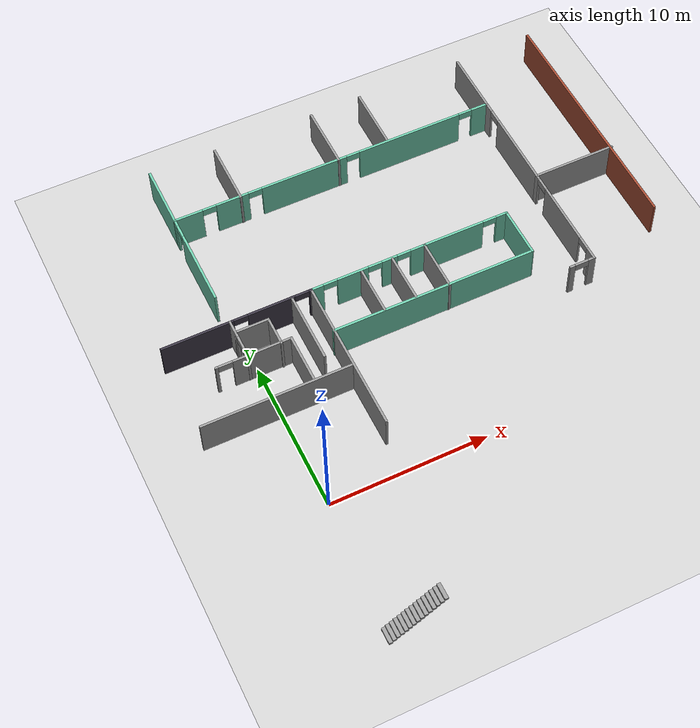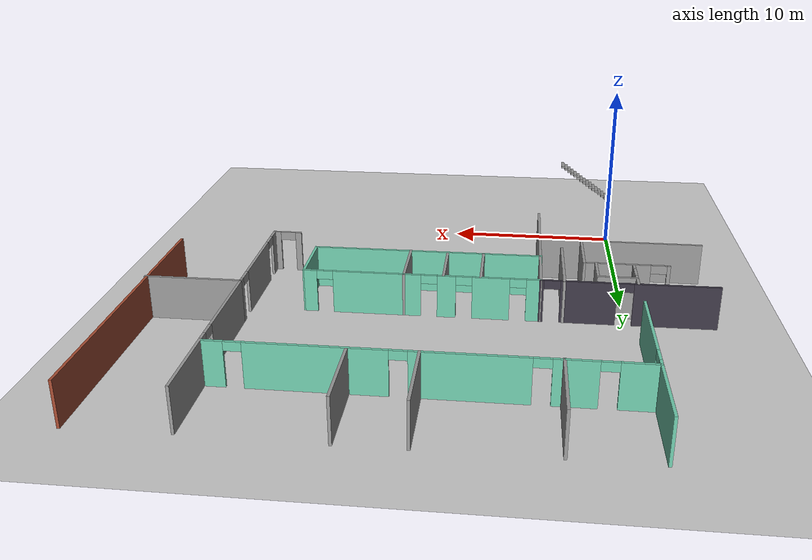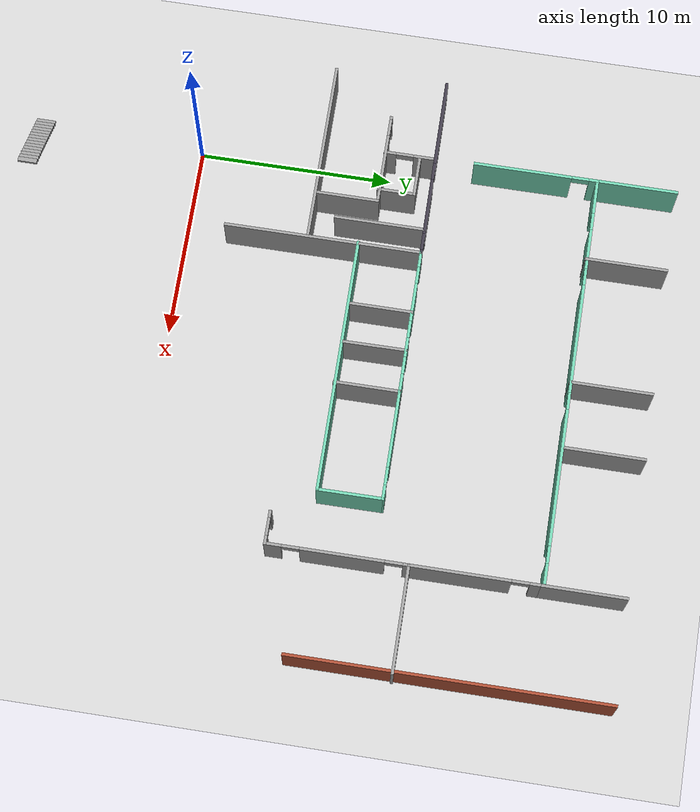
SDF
<sdf version="1.7">
 <world name="default">
  <model name="ground_plane">
   <static>1</static>
   <link name="link">
    <collision name="collision">
     <geometry><plane><normal>0 0 1</normal><size>100 100</size></plane></geometry>
     <surface>
      <contact><ode><kp>1e15</kp><kd>1e13</kd></ode></contact>
      <friction><ode><mu>1.0</mu><mu2>1.0</mu2></ode></friction>
     </surface>
    </collision>
    <visual name="visual">
     <cast_shadows>0</cast_shadows>
     <geometry><plane><normal>0 0 1</normal><size>100 100</size></plane></geometry>
     <material>
      <script><uri>file://media/materials/scripts/gazebo.material</uri><name>Gazebo/Grey</name></script>
     </material>
    </visual>
   </link>
  </model>
  <model name="circuit_launch">
   <pose>-0.874625 6.32825 0 0 -0 0</pose>
   <link name="Stairs_2">
    <visual name="Stairs_2_Visual_0">
     <pose>0.290776 -14.8993 0.083333 0 -0 1.5708</pose>
     <geometry><box><size>1 0.233333 0.166667</size></box></geometry>
     <material>
      <script><uri>file://media/materials/scripts/gazebo.material</uri><name>Gazebo/Grey</name></script>
      <ambient>1 1 1 1</ambient>
     </material>
     <meta><layer>0</layer></meta>
    </visual>
    <collision name="Stairs_2_Collision_0">
     <geometry><box><size>1 0.233333 0.166667</size></box></geometry>
     <pose>0.290776 -14.8993 0.083333 0 -0 1.5708</pose>
    </collision>
    <visual name="Stairs_2_Visual_1">
     <pose>0.524109 -14.8993 0.25 0 -0 1.5708</pose>
     <geometry><box><size>1 0.233333 0.166667</size></box></geometry>
     <material>
      <script><uri>file://media/materials/scripts/gazebo.material</uri><name>Gazebo/Grey</name></script>
      <ambient>1 1 1 1</ambient>
     </material>
     <meta><layer>0</layer></meta>
    </visual>
    <collision name="Stairs_2_Collision_1">
     <geometry><box><size>1 0.233333 0.166667</size></box></geometry>
     <pose>0.524109 -14.8993 0.25 0 -0 1.5708</pose>
    </collision>
    <visual name="Stairs_2_Visual_2">
     <pose>0.757443 -14.8993 0.416667 0 -0 1.5708</pose>
     <geometry><box><size>1 0.233333 0.166667</size></box></geometry>
     <material>
      <script><uri>file://media/materials/scripts/gazebo.material</uri><name>Gazebo/Grey</name></script>
      <ambient>1 1 1 1</ambient>
     </material>
     <meta><layer>0</layer></meta>
    </visual>
    <collision name="Stairs_2_Collision_2">
     <geometry><box><size>1 0.233333 0.166667</size></box></geometry>
     <pose>0.757443 -14.8993 0.416667 0 -0 1.5708</pose>
    </collision>
    <visual name="Stairs_2_Visual_3">
     <pose>0.990776 -14.8993 0.583333 0 -0 1.5708</pose>
     <geometry><box><size>1 0.233333 0.166667</size></box></geometry>
     <material>
      <script><uri>file://media/materials/scripts/gazebo.material</uri><name>Gazebo/Grey</name></script>
      <ambient>1 1 1 1</ambient>
     </material>
     <meta><layer>0</layer></meta>
    </visual>
    <collision name="Stairs_2_Collision_3">
     <geometry><box><size>1 0.233333 0.166667</size></box></geometry>
     <pose>0.990776 -14.8993 0.583333 0 -0 1.5708</pose>
    </collision>
    <visual name="Stairs_2_Visual_4">
     <pose>1.22411 -14.8993 0.75 0 -0 1.5708</pose>
     <geometry><box><size>1 0.233333 0.166667</size></box></geometry>
     <material>
      <script><uri>file://media/materials/scripts/gazebo.material</uri><name>Gazebo/Grey</name></script>
      <ambient>1 1 1 1</ambient>
     </material>
     <meta><layer>0</layer></meta>
    </visual>
    <collision name="Stairs_2_Collision_4">
     <geometry><box><size>1 0.233333 0.166667</size></box></geometry>
     <pose>1.22411 -14.8993 0.75 0 -0 1.5708</pose>
    </collision>
    <visual name="Stairs_2_Visual_5">
     <pose>1.45744 -14.8993 0.916667 0 -0 1.5708</pose>
     <geometry><box><size>1 0.233333 0.166667</size></box></geometry>
     <material>
      <script><uri>file://media/materials/scripts/gazebo.material</uri><name>Gazebo/Grey</name></script>
      <ambient>1 1 1 1</ambient>
     </material>
     <meta><layer>0</layer></meta>
    </visual>
    <collision name="Stairs_2_Collision_5">
     <geometry><box><size>1 0.233333 0.166667</size></box></geometry>
     <pose>1.45744 -14.8993 0.916667 0 -0 1.5708</pose>
    </collision>
    <visual name="Stairs_2_Visual_6">
     <pose>1.69078 -14.8993 1.08333 0 -0 1.5708</pose>
     <geometry><box><size>1 0.233333 0.166667</size></box></geometry>
     <material>
      <script><uri>file://media/materials/scripts/gazebo.material</uri><name>Gazebo/Grey</name></script>
      <ambient>1 1 1 1</ambient>
     </material>
     <meta><layer>0</layer></meta>
    </visual>
    <collision name="Stairs_2_Collision_6">
     <geometry><box><size>1 0.233333 0.166667</size></box></geometry>
     <pose>1.69078 -14.8993 1.08333 0 -0 1.5708</pose>
    </collision>
    <visual name="Stairs_2_Visual_7">
     <pose>1.92411 -14.8993 1.25 0 -0 1.5708</pose>
     <geometry><box><size>1 0.233333 0.166667</size></box></geometry>
     <material>
      <script><uri>file://media/materials/scripts/gazebo.material</uri><name>Gazebo/Grey</name></script>
      <ambient>1 1 1 1</ambient>
     </material>
     <meta><layer>0</layer></meta>
    </visual>
    <collision name="Stairs_2_Collision_7">
     <geometry><box><size>1 0.233333 0.166667</size></box></geometry>
     <pose>1.92411 -14.8993 1.25 0 -0 1.5708</pose>
    </collision>
    <visual name="Stairs_2_Visual_8">
     <pose>2.15744 -14.8993 1.41667 0 -0 1.5708</pose>
     <geometry><box><size>1 0.233333 0.166667</size></box></geometry>
     <material>
      <script><uri>file://media/materials/scripts/gazebo.material</uri><name>Gazebo/Grey</name></script>
      <ambient>1 1 1 1</ambient>
     </material>
     <meta><layer>0</layer></meta>
    </visual>
    <collision name="Stairs_2_Collision_8">
     <geometry><box><size>1 0.233333 0.166667</size></box></geometry>
     <pose>2.15744 -14.8993 1.41667 0 -0 1.5708</pose>
    </collision>
    <visual name="Stairs_2_Visual_9">
     <pose>2.39078 -14.8993 1.58333 0 -0 1.5708</pose>
     <geometry><box><size>1 0.233333 0.166667</size></box></geometry>
     <material>
      <script><uri>file://media/materials/scripts/gazebo.material</uri><name>Gazebo/Grey</name></script>
      <ambient>1 1 1 1</ambient>
     </material>
     <meta><layer>0</layer></meta>
    </visual>
    <collision name="Stairs_2_Collision_9">
     <geometry><box><size>1 0.233333 0.166667</size></box></geometry>
     <pose>2.39078 -14.8993 1.58333 0 -0 1.5708</pose>
    </collision>
    <visual name="Stairs_2_Visual_10">
     <pose>2.62411 -14.8993 1.75 0 -0 1.5708</pose>
     <geometry><box><size>1 0.233333 0.166667</size></box></geometry>
     <material>
      <script><uri>file://media/materials/scripts/gazebo.material</uri><name>Gazebo/Grey</name></script>
      <ambient>1 1 1 1</ambient>
     </material>
     <meta><layer>0</layer></meta>
    </visual>
    <collision name="Stairs_2_Collision_10">
     <geometry><box><size>1 0.233333 0.166667</size></box></geometry>
     <pose>2.62411 -14.8993 1.75 0 -0 1.5708</pose>
    </collision>
    <visual name="Stairs_2_Visual_11">
     <pose>2.85744 -14.8993 1.91667 0 -0 1.5708</pose>
     <geometry><box><size>1 0.233333 0.166667</size></box></geometry>
     <material>
      <script><uri>file://media/materials/scripts/gazebo.material</uri><name>Gazebo/Grey</name></script>
      <ambient>1 1 1 1</ambient>
     </material>
     <meta><layer>0</layer></meta>
    </visual>
    <collision name="Stairs_2_Collision_11">
     <geometry><box><size>1 0.233333 0.166667</size></box></geometry>
     <pose>2.85744 -14.8993 1.91667 0 -0 1.5708</pose>
    </collision>
    <visual name="Stairs_2_Visual_12">
     <pose>3.09078 -14.8993 2.08333 0 -0 1.5708</pose>
     <geometry><box><size>1 0.233333 0.166667</size></box></geometry>
     <material>
      <script><uri>file://media/materials/scripts/gazebo.material</uri><name>Gazebo/Grey</name></script>
      <ambient>1 1 1 1</ambient>
     </material>
     <meta><layer>0</layer></meta>
    </visual>
    <collision name="Stairs_2_Collision_12">
     <geometry><box><size>1 0.233333 0.166667</size></box></geometry>
     <pose>3.09078 -14.8993 2.08333 0 -0 1.5708</pose>
    </collision>
    <visual name="Stairs_2_Visual_13">
     <pose>3.32411 -14.8993 2.25 0 -0 1.5708</pose>
     <geometry><box><size>1 0.233333 0.166667</size></box></geometry>
     <material>
      <script><uri>file://media/materials/scripts/gazebo.material</uri><name>Gazebo/Grey</name></script>
      <ambient>1 1 1 1</ambient>
     </material>
     <meta><layer>0</layer></meta>
    </visual>
    <collision name="Stairs_2_Collision_13">
     <geometry><box><size>1 0.233333 0.166667</size></box></geometry>
     <pose>3.32411 -14.8993 2.25 0 -0 1.5708</pose>
    </collision>
    <visual name="Stairs_2_Visual_14">
     <pose>3.55744 -14.8993 2.41667 0 -0 1.5708</pose>
     <geometry><box><size>1 0.233333 0.166667</size></box></geometry>
     <material>
      <script><uri>file://media/materials/scripts/gazebo.material</uri><name>Gazebo/Grey</name></script>
      <ambient>1 1 1 1</ambient>
     </material>
     <meta><layer>0</layer></meta>
    </visual>
    <collision name="Stairs_2_Collision_14">
     <geometry><box><size>1 0.233333 0.166667</size></box></geometry>
     <pose>3.55744 -14.8993 2.41667 0 -0 1.5708</pose>
    </collision>
   </link>
   <link name="Wall_100">
    <pose>21.684 10.9599 0 0 -0 1.5708</pose>
    <visual name="Wall_100_Visual_0">
     <pose>-0.787773 0 1.25 0 -0 0</pose>
     <geometry><box><size>5.12125 0.15 2.5</size></box></geometry>
     <material>
      <script><uri>file://media/materials/scripts/gazebo.material</uri><name>Gazebo/Grey</name></script>
      <ambient>1 1 1 1</ambient>
     </material>
     <meta><layer>0</layer></meta>
    </visual>
    <collision name="Wall_100_Collision_0">
     <geometry><box><size>5.12125 0.15 2.5</size></box></geometry>
     <pose>-0.787773 0 1.25 0 -0 0</pose>
    </collision>
    <visual name="Wall_100_Visual_1">
     <pose>3.01063 0 1.25 0 -0 0</pose>
     <geometry><box><size>0.675545 0.15 2.5</size></box></geometry>
     <material>
      <script><uri>file://media/materials/scripts/gazebo.material</uri><name>Gazebo/Grey</name></script>
      <ambient>1 1 1 1</ambient>
     </material>
     <meta><layer>0</layer></meta>
    </visual>
    <collision name="Wall_100_Collision_1">
     <geometry><box><size>0.675545 0.15 2.5</size></box></geometry>
     <pose>3.01063 0 1.25 0 -0 0</pose>
    </collision>
    <visual name="Wall_100_Visual_2">
     <pose>2.22286 0 2.25 0 -0 0</pose>
     <geometry><box><size>0.9 0.15 0.5</size></box></geometry>
     <material>
      <script><uri>file://media/materials/scripts/gazebo.material</uri><name>Gazebo/Grey</name></script>
      <ambient>1 1 1 1</ambient>
     </material>
     <meta><layer>0</layer></meta>
    </visual>
    <collision name="Wall_100_Collision_2">
     <geometry><box><size>0.9 0.15 0.5</size></box></geometry>
     <pose>2.22286 0 2.25 0 -0 0</pose>
    </collision>
   </link>
   <link name="Wall_12">
    <collision name="Wall_12_Collision">
     <geometry><box><size>10.25 0.15 2.5</size></box></geometry>
     <pose>0 0 1.25 0 -0 0</pose>
    </collision>
    <visual name="Wall_12_Visual">
     <pose>0 0 1.25 0 -0 0</pose>
     <geometry><box><size>10.25 0.15 2.5</size></box></geometry>
     <material>
      <script><uri>file://media/materials/scripts/gazebo.material</uri><name>Gazebo/Grey</name></script>
      <ambient>1 1 1 1</ambient>
     </material>
     <meta><layer>0</layer></meta>
    </visual>
    <pose>5.48338 0.868521 0 0 -0 1.5708</pose>
   </link>
   <link name="Wall_13">
    <pose>0.725889 5.90411 0 0 -0 -3.13856</pose>
    <visual name="Wall_13_Visual_0">
     <pose>-4.71281 0 1.25 0 -0 0</pose>
     <geometry><box><size>0.239451 0.15 2.5</size></box></geometry>
     <material>
      <script><uri>file://media/materials/scripts/gazebo.material</uri><name>Gazebo/Grey</name></script>
      <ambient>0.239216 0.219608 0.27451 1</ambient>
     </material>
     <meta><layer>0</layer></meta>
    </visual>
    <collision name="Wall_13_Collision_0">
     <geometry><box><size>0.239451 0.15 2.5</size></box></geometry>
     <pose>-4.71281 0 1.25 0 -0 0</pose>
    </collision>
    <visual name="Wall_13_Visual_1">
     <pose>-2.18096 0 1.25 0 -0 0</pose>
     <geometry><box><size>3.02425 0.15 2.5</size></box></geometry>
     <material>
      <script><uri>file://media/materials/scripts/gazebo.material</uri><name>Gazebo/Grey</name></script>
      <ambient>0.239216 0.219608 0.27451 1</ambient>
     </material>
     <meta><layer>0</layer></meta>
    </visual>
    <collision name="Wall_13_Collision_1">
     <geometry><box><size>3.02425 0.15 2.5</size></box></geometry>
     <pose>-2.18096 0 1.25 0 -0 0</pose>
    </collision>
    <visual name="Wall_13_Visual_2">
     <pose>2.53185 0 1.25 0 -0 0</pose>
     <geometry><box><size>4.60137 0.15 2.5</size></box></geometry>
     <material>
      <script><uri>file://media/materials/scripts/gazebo.material</uri><name>Gazebo/Grey</name></script>
      <ambient>0.239216 0.219608 0.27451 1</ambient>
     </material>
     <meta><layer>0</layer></meta>
    </visual>
    <collision name="Wall_13_Collision_2">
     <geometry><box><size>4.60137 0.15 2.5</size></box></geometry>
     <pose>2.53185 0 1.25 0 -0 0</pose>
    </collision>
    <visual name="Wall_13_Visual_3">
     <pose>-4.14309 0 2.25 0 -0 0</pose>
     <geometry><box><size>0.9 0.15 0.5</size></box></geometry>
     <material>
      <script><uri>file://media/materials/scripts/gazebo.material</uri><name>Gazebo/Grey</name></script>
      <ambient>0.239216 0.219608 0.27451 1</ambient>
     </material>
     <meta><layer>0</layer></meta>
    </visual>
    <collision name="Wall_13_Collision_3">
     <geometry><box><size>0.9 0.15 0.5</size></box></geometry>
     <pose>-4.14309 0 2.25 0 -0 0</pose>
    </collision>
    <visual name="Wall_13_Visual_4">
     <pose>-0.218831 0 2.25 0 -0 0</pose>
     <geometry><box><size>0.9 0.15 0.5</size></box></geometry>
     <material>
      <script><uri>file://media/materials/scripts/gazebo.material</uri><name>Gazebo/Grey</name></script>
      <ambient>0.239216 0.219608 0.27451 1</ambient>
     </material>
     <meta><layer>0</layer></meta>
    </visual>
    <collision name="Wall_13_Collision_4">
     <geometry><box><size>0.9 0.15 0.5</size></box></geometry>
     <pose>-0.218831 0 2.25 0 -0 0</pose>
    </collision>
   </link>
   <link name="Wall_156">
    <collision name="Wall_156_Collision">
     <geometry><box><size>4.3032 0.15 2.5</size></box></geometry>
     <pose>0 0 1.25 0 -0 0</pose>
    </collision>
    <visual name="Wall_156_Visual">
     <pose>0 0 1.25 0 -0 0</pose>
     <geometry><box><size>4.3032 0.15 2.5</size></box></geometry>
     <material>
      <script><uri>file://media/materials/scripts/gazebo.material</uri><name>Gazebo/Grey</name></script>
      <ambient>1 1 1 1</ambient>
     </material>
     <meta><layer>0</layer></meta>
    </visual>
    <pose>21.684 16.3099 0 0 -0 1.5708</pose>
   </link>
   <link name="Wall_158">
    <collision name="Wall_158_Collision">
     <geometry><box><size>4.25 0.15 2.5</size></box></geometry>
     <pose>0 0 1.25 0 -0 0</pose>
    </collision>
    <visual name="Wall_158_Visual">
     <pose>0 0 1.25 0 -0 0</pose>
     <geometry><box><size>4.25 0.15 2.5</size></box></geometry>
     <material>
      <script><uri>file://media/materials/scripts/gazebo.material</uri><name>Gazebo/Grey</name></script>
      <ambient>1 1 1 1</ambient>
     </material>
     <meta><layer>0</layer></meta>
    </visual>
    <pose>14.6128 16.3903 0 0 -0 1.5708</pose>
   </link>
   <link name="Wall_160">
    <collision name="Wall_160_Collision">
     <geometry><box><size>4.25 0.15 2.5</size></box></geometry>
     <pose>0 0 1.25 0 -0 0</pose>
    </collision>
    <visual name="Wall_160_Visual">
     <pose>0 0 1.25 0 -0 0</pose>
     <geometry><box><size>4.25 0.15 2.5</size></box></geometry>
     <material>
      <script><uri>file://media/materials/scripts/gazebo.material</uri><name>Gazebo/Grey</name></script>
      <ambient>1 1 1 1</ambient>
     </material>
     <meta><layer>0</layer></meta>
    </visual>
    <pose>11.1867 16.3597 0 0 -0 1.5708</pose>
   </link>
   <link name="Wall_163">
    <collision name="Wall_163_Collision">
     <geometry><box><size>4.25 0.15 2.5</size></box></geometry>
     <pose>0 0 1.25 0 -0 0</pose>
    </collision>
    <visual name="Wall_163_Visual">
     <pose>0 0 1.25 0 -0 0</pose>
     <geometry><box><size>4.25 0.15 2.5</size></box></geometry>
     <material>
      <script><uri>file://media/materials/scripts/gazebo.material</uri><name>Gazebo/Grey</name></script>
      <ambient>1 1 1 1</ambient>
     </material>
     <meta><layer>0</layer></meta>
    </visual>
    <pose>4.51804 16.3291 0 0 -0 1.5708</pose>
   </link>
   <link name="Wall_165">
    <collision name="Wall_165_Collision">
     <geometry><box><size>4.25 0.15 2.5</size></box></geometry>
     <pose>0 0 1.25 0 -0 0</pose>
    </collision>
    <visual name="Wall_165_Visual">
     <pose>0 0 1.25 0 -0 0</pose>
     <geometry><box><size>4.25 0.15 2.5</size></box></geometry>
     <material>
      <script><uri>file://media/materials/scripts/gazebo.material</uri><name>Gazebo/Grey</name></script>
      <ambient>0.435294 0.796078 0.67451 1</ambient>
     </material>
     <meta><layer>0</layer></meta>
    </visual>
    <pose>0.179829 16.3748 0 0 -0 1.5708</pose>
   </link>
   <link name="Wall_194">
    <pose>10.8548 14.3248 0 0 -0 0</pose>
    <visual name="Wall_194_Visual_0">
     <pose>-9.80483 0 1.25 0 -0 0</pose>
     <geometry><box><size>1.89033 0.15 2.5</size></box></geometry>
     <material>
      <script><uri>file://media/materials/scripts/gazebo.material</uri><name>Gazebo/Grey</name></script>
      <ambient>0.435294 0.796078 0.67451 1</ambient>
     </material>
     <meta><layer>0</layer></meta>
    </visual>
    <collision name="Wall_194_Collision_0">
     <geometry><box><size>1.89033 0.15 2.5</size></box></geometry>
     <pose>-9.80483 0 1.25 0 -0 0</pose>
    </collision>
    <visual name="Wall_194_Visual_1">
     <pose>-6.88016 0 1.25 0 -0 0</pose>
     <geometry><box><size>2.15902 0.15 2.5</size></box></geometry>
     <material>
      <script><uri>file://media/materials/scripts/gazebo.material</uri><name>Gazebo/Grey</name></script>
      <ambient>0.435294 0.796078 0.67451 1</ambient>
     </material>
     <meta><layer>0</layer></meta>
    </visual>
    <collision name="Wall_194_Collision_1">
     <geometry><box><size>2.15902 0.15 2.5</size></box></geometry>
     <pose>-6.88016 0 1.25 0 -0 0</pose>
    </collision>
    <visual name="Wall_194_Visual_2">
     <pose>-2.01232 0 1.25 0 -0 0</pose>
     <geometry><box><size>5.77665 0.15 2.5</size></box></geometry>
     <material>
      <script><uri>file://media/materials/scripts/gazebo.material</uri><name>Gazebo/Grey</name></script>
      <ambient>0.435294 0.796078 0.67451 1</ambient>
     </material>
     <meta><layer>0</layer></meta>
    </visual>
    <collision name="Wall_194_Collision_2">
     <geometry><box><size>5.77665 0.15 2.5</size></box></geometry>
     <pose>-2.01232 0 1.25 0 -0 0</pose>
    </collision>
    <visual name="Wall_194_Visual_3">
     <pose>5.28944 0 1.25 0 -0 0</pose>
     <geometry><box><size>7.02686 0.15 2.5</size></box></geometry>
     <material>
      <script><uri>file://media/materials/scripts/gazebo.material</uri><name>Gazebo/Grey</name></script>
      <ambient>0.435294 0.796078 0.67451 1</ambient>
     </material>
     <meta><layer>0</layer></meta>
    </visual>
    <collision name="Wall_194_Collision_3">
     <geometry><box><size>7.02686 0.15 2.5</size></box></geometry>
     <pose>5.28944 0 1.25 0 -0 0</pose>
    </collision>
    <visual name="Wall_194_Visual_4">
     <pose>10.2264 0 1.25 0 -0 0</pose>
     <geometry><box><size>1.04713 0.15 2.5</size></box></geometry>
     <material>
      <script><uri>file://media/materials/scripts/gazebo.material</uri><name>Gazebo/Grey</name></script>
      <ambient>0.435294 0.796078 0.67451 1</ambient>
     </material>
     <meta><layer>0</layer></meta>
    </visual>
    <collision name="Wall_194_Collision_4">
     <geometry><box><size>1.04713 0.15 2.5</size></box></geometry>
     <pose>10.2264 0 1.25 0 -0 0</pose>
    </collision>
    <visual name="Wall_194_Visual_5">
     <pose>-8.40967 0 2.25 0 -0 0</pose>
     <geometry><box><size>0.9 0.15 0.5</size></box></geometry>
     <material>
      <script><uri>file://media/materials/scripts/gazebo.material</uri><name>Gazebo/Grey</name></script>
      <ambient>0.435294 0.796078 0.67451 1</ambient>
     </material>
     <meta><layer>0</layer></meta>
    </visual>
    <collision name="Wall_194_Collision_5">
     <geometry><box><size>0.9 0.15 0.5</size></box></geometry>
     <pose>-8.40967 0 2.25 0 -0 0</pose>
    </collision>
    <visual name="Wall_194_Visual_6">
     <pose>-5.35064 0 2.25 0 -0 0</pose>
     <geometry><box><size>0.9 0.15 0.5</size></box></geometry>
     <material>
      <script><uri>file://media/materials/scripts/gazebo.material</uri><name>Gazebo/Grey</name></script>
      <ambient>0.435294 0.796078 0.67451 1</ambient>
     </material>
     <meta><layer>0</layer></meta>
    </visual>
    <collision name="Wall_194_Collision_6">
     <geometry><box><size>0.9 0.15 0.5</size></box></geometry>
     <pose>-5.35064 0 2.25 0 -0 0</pose>
    </collision>
    <visual name="Wall_194_Visual_7">
     <pose>1.32601 0 2.25 0 -0 0</pose>
     <geometry><box><size>0.9 0.15 0.5</size></box></geometry>
     <material>
      <script><uri>file://media/materials/scripts/gazebo.material</uri><name>Gazebo/Grey</name></script>
      <ambient>0.435294 0.796078 0.67451 1</ambient>
     </material>
     <meta><layer>0</layer></meta>
    </visual>
    <collision name="Wall_194_Collision_7">
     <geometry><box><size>0.9 0.15 0.5</size></box></geometry>
     <pose>1.32601 0 2.25 0 -0 0</pose>
    </collision>
    <visual name="Wall_194_Visual_8">
     <pose>9.25286 0 2.25 0 -0 0</pose>
     <geometry><box><size>0.9 0.15 0.5</size></box></geometry>
     <material>
      <script><uri>file://media/materials/scripts/gazebo.material</uri><name>Gazebo/Grey</name></script>
      <ambient>0.435294 0.796078 0.67451 1</ambient>
     </material>
     <meta><layer>0</layer></meta>
    </visual>
    <collision name="Wall_194_Collision_8">
     <geometry><box><size>0.9 0.15 0.5</size></box></geometry>
     <pose>9.25286 0 2.25 0 -0 0</pose>
    </collision>
   </link>
   <link name="Wall_198">
    <pose>0.179829 11.1498 0 0 -0 -1.5708</pose>
    <visual name="Wall_198_Visual_0">
     <pose>-2.99528 0 1.25 0 -0 0</pose>
     <geometry><box><size>0.509431 0.15 2.5</size></box></geometry>
     <material>
      <script><uri>file://media/materials/scripts/gazebo.material</uri><name>Gazebo/Grey</name></script>
      <ambient>0.435294 0.796078 0.67451 1</ambient>
     </material>
     <meta><layer>0</layer></meta>
    </visual>
    <collision name="Wall_198_Collision_0">
     <geometry><box><size>0.509431 0.15 2.5</size></box></geometry>
     <pose>-2.99528 0 1.25 0 -0 0</pose>
    </collision>
    <visual name="Wall_198_Visual_1">
     <pose>0.704715 0 1.25 0 -0 0</pose>
     <geometry><box><size>5.09057 0.15 2.5</size></box></geometry>
     <material>
      <script><uri>file://media/materials/scripts/gazebo.material</uri><name>Gazebo/Grey</name></script>
      <ambient>0.435294 0.796078 0.67451 1</ambient>
     </material>
     <meta><layer>0</layer></meta>
    </visual>
    <collision name="Wall_198_Collision_1">
     <geometry><box><size>5.09057 0.15 2.5</size></box></geometry>
     <pose>0.704715 0 1.25 0 -0 0</pose>
    </collision>
    <visual name="Wall_198_Visual_2">
     <pose>-2.29057 0 2.25 0 -0 0</pose>
     <geometry><box><size>0.9 0.15 0.5</size></box></geometry>
     <material>
      <script><uri>file://media/materials/scripts/gazebo.material</uri><name>Gazebo/Grey</name></script>
      <ambient>0.435294 0.796078 0.67451 1</ambient>
     </material>
     <meta><layer>0</layer></meta>
    </visual>
    <collision name="Wall_198_Collision_2">
     <geometry><box><size>0.9 0.15 0.5</size></box></geometry>
     <pose>-2.29057 0 2.25 0 -0 0</pose>
    </collision>
   </link>
   <link name="Wall_214">
    <collision name="Wall_214_Collision">
     <geometry><box><size>3.44918 0.15 2.5</size></box></geometry>
     <pose>0 0 1.25 0 -0 0</pose>
    </collision>
    <visual name="Wall_214_Visual">
     <pose>0 0 1.25 0 -0 0</pose>
     <geometry><box><size>3.44918 0.15 2.5</size></box></geometry>
     <material>
      <script><uri>file://media/materials/scripts/gazebo.material</uri><name>Gazebo/Grey</name></script>
      <ambient>1 1 1 1</ambient>
     </material>
     <meta><layer>0</layer></meta>
    </visual>
    <pose>12.9929 4.29092 0 0 -0 -1.5708</pose>
   </link>
   <link name="Wall_216">
    <collision name="Wall_216_Collision">
     <geometry><box><size>3.30783 0.15 2.5</size></box></geometry>
     <pose>0 0 1.25 0 -0 0</pose>
    </collision>
    <visual name="Wall_216_Visual">
     <pose>0 0 1.25 0 -0 0</pose>
     <geometry><box><size>3.30783 0.15 2.5</size></box></geometry>
     <material>
      <script><uri>file://media/materials/scripts/gazebo.material</uri><name>Gazebo/Grey</name></script>
      <ambient>1 1 1 1</ambient>
     </material>
     <meta><layer>0</layer></meta>
    </visual>
    <pose>10.8106 4.34121 0 0 -0 -1.56443</pose>
   </link>
   <link name="Wall_218">
    <collision name="Wall_218_Collision">
     <geometry><box><size>3.34806 0.15 2.5</size></box></geometry>
     <pose>0 0 1.25 0 -0 0</pose>
    </collision>
    <visual name="Wall_218_Visual">
     <pose>0 0 1.25 0 -0 0</pose>
     <geometry><box><size>3.34806 0.15 2.5</size></box></geometry>
     <material>
      <script><uri>file://media/materials/scripts/gazebo.material</uri><name>Gazebo/Grey</name></script>
      <ambient>1 1 1 1</ambient>
     </material>
     <meta><layer>0</layer></meta>
    </visual>
    <pose>8.74891 4.32109 0 0 -0 -1.5708</pose>
   </link>
   <link name="Wall_22">
    <collision name="Wall_22_Collision">
     <geometry><box><size>9.5 0.15 2.5</size></box></geometry>
     <pose>0 0 1.25 0 -0 0</pose>
    </collision>
    <visual name="Wall_22_Visual">
     <pose>0 0 1.25 0 -0 0</pose>
     <geometry><box><size>9.5 0.15 2.5</size></box></geometry>
     <material>
      <script><uri>file://media/materials/scripts/gazebo.material</uri><name>Gazebo/Grey</name></script>
      <ambient>1 1 1 1</ambient>
     </material>
     <meta><layer>0</layer></meta>
    </visual>
    <pose>0.676779 0.065985 0 0 -0 0</pose>
   </link>
   <link name="Wall_224">
    <pose>15.7929 5.94024 0 0 -0 0</pose>
    <visual name="Wall_224_Visual_0">
     <pose>-0.850007 0 1.25 0 -0 0</pose>
     <geometry><box><size>4.04999 0.15 2.5</size></box></geometry>
     <material>
      <script><uri>file://media/materials/scripts/gazebo.material</uri><name>Gazebo/Grey</name></script>
      <ambient>0.435294 0.796078 0.67451 1</ambient>
     </material>
     <meta><layer>0</layer></meta>
    </visual>
    <collision name="Wall_224_Collision_0">
     <geometry><box><size>4.04999 0.15 2.5</size></box></geometry>
     <pose>-0.850007 0 1.25 0 -0 0</pose>
    </collision>
    <visual name="Wall_224_Visual_1">
     <pose>2.47499 0 1.25 0 -0 0</pose>
     <geometry><box><size>0.800014 0.15 2.5</size></box></geometry>
     <material>
      <script><uri>file://media/materials/scripts/gazebo.material</uri><name>Gazebo/Grey</name></script>
      <ambient>0.435294 0.796078 0.67451 1</ambient>
     </material>
     <meta><layer>0</layer></meta>
    </visual>
    <collision name="Wall_224_Collision_1">
     <geometry><box><size>0.800014 0.15 2.5</size></box></geometry>
     <pose>2.47499 0 1.25 0 -0 0</pose>
    </collision>
    <visual name="Wall_224_Visual_2">
     <pose>1.62499 0 2.25 0 -0 0</pose>
     <geometry><box><size>0.9 0.15 0.5</size></box></geometry>
     <material>
      <script><uri>file://media/materials/scripts/gazebo.material</uri><name>Gazebo/Grey</name></script>
      <ambient>0.435294 0.796078 0.67451 1</ambient>
     </material>
     <meta><layer>0</layer></meta>
    </visual>
    <collision name="Wall_224_Collision_2">
     <geometry><box><size>0.9 0.15 0.5</size></box></geometry>
     <pose>1.62499 0 2.25 0 -0 0</pose>
    </collision>
   </link>
   <link name="Wall_225">
    <collision name="Wall_225_Collision">
     <geometry><box><size>3.40841 0.15 2.5</size></box></geometry>
     <pose>0 0 1.25 0 -0 0</pose>
    </collision>
    <visual name="Wall_225_Visual">
     <pose>0 0 1.25 0 -0 0</pose>
     <geometry><box><size>3.40841 0.15 2.5</size></box></geometry>
     <material>
      <script><uri>file://media/materials/scripts/gazebo.material</uri><name>Gazebo/Grey</name></script>
      <ambient>0.435294 0.796078 0.67451 1</ambient>
     </material>
     <meta><layer>0</layer></meta>
    </visual>
    <pose>18.5987 4.31104 0 0 -0 -1.56721</pose>
   </link>
   <link name="Wall_32">
    <pose>0.651978 3.30545 0 0 -0 0</pose>
    <visual name="Wall_32_Visual_0">
     <pose>-2.33849 0 1.25 0 -0 0</pose>
     <geometry><box><size>0.19508 0.15 2.5</size></box></geometry>
     <material>
      <script><uri>file://media/materials/scripts/gazebo.material</uri><name>Gazebo/Grey</name></script>
      <ambient>1 1 1 1</ambient>
     </material>
     <meta><layer>0</layer></meta>
    </visual>
    <collision name="Wall_32_Collision_0">
     <geometry><box><size>0.19508 0.15 2.5</size></box></geometry>
     <pose>-2.33849 0 1.25 0 -0 0</pose>
    </collision>
    <visual name="Wall_32_Visual_1">
     <pose>0.54754 0 1.25 0 -0 0</pose>
     <geometry><box><size>3.77699 0.15 2.5</size></box></geometry>
     <material>
      <script><uri>file://media/materials/scripts/gazebo.material</uri><name>Gazebo/Grey</name></script>
      <ambient>1 1 1 1</ambient>
     </material>
     <meta><layer>0</layer></meta>
    </visual>
    <collision name="Wall_32_Collision_1">
     <geometry><box><size>3.77699 0.15 2.5</size></box></geometry>
     <pose>0.54754 0 1.25 0 -0 0</pose>
    </collision>
    <visual name="Wall_32_Visual_2">
     <pose>-1.79095 0 2.25 0 -0 0</pose>
     <geometry><box><size>0.9 0.15 0.5</size></box></geometry>
     <material>
      <script><uri>file://media/materials/scripts/gazebo.material</uri><name>Gazebo/Grey</name></script>
      <ambient>1 1 1 1</ambient>
     </material>
     <meta><layer>0</layer></meta>
    </visual>
    <collision name="Wall_32_Collision_2">
     <geometry><box><size>0.9 0.15 0.5</size></box></geometry>
     <pose>-1.79095 0 2.25 0 -0 0</pose>
    </collision>
   </link>
   <link name="Wall_33">
    <collision name="Wall_33_Collision">
     <geometry><box><size>3.25 0.15 2.5</size></box></geometry>
     <pose>0 0 1.25 0 -0 0</pose>
    </collision>
    <visual name="Wall_33_Visual">
     <pose>0 0 1.25 0 -0 0</pose>
     <geometry><box><size>3.25 0.15 2.5</size></box></geometry>
     <material>
      <script><uri>file://media/materials/scripts/gazebo.material</uri><name>Gazebo/Grey</name></script>
      <ambient>1 1 1 1</ambient>
     </material>
     <meta><layer>0</layer></meta>
    </visual>
    <pose>3.01301 1.75545 0 0 -0 -1.5708</pose>
   </link>
   <link name="Wall_36">
    <collision name="Wall_36_Collision">
     <geometry><box><size>2.25 0.15 2.5</size></box></geometry>
     <pose>0 0 1.25 0 -0 0</pose>
    </collision>
    <visual name="Wall_36_Visual">
     <pose>0 0 1.25 0 -0 0</pose>
     <geometry><box><size>2.25 0.15 2.5</size></box></geometry>
     <material>
      <script><uri>file://media/materials/scripts/gazebo.material</uri><name>Gazebo/Grey</name></script>
      <ambient>1 1 1 1</ambient>
     </material>
     <meta><layer>0</layer></meta>
    </visual>
    <pose>1.31023 5.10177 0 0 -0 0</pose>
   </link>
   <link name="Wall_39">
    <collision name="Wall_39_Collision">
     <geometry><box><size>2 0.15 2.5</size></box></geometry>
     <pose>0 0 1.25 0 -0 0</pose>
    </collision>
    <visual name="Wall_39_Visual">
     <pose>0 0 1.25 0 -0 0</pose>
     <geometry><box><size>2 0.15 2.5</size></box></geometry>
     <material>
      <script><uri>file://media/materials/scripts/gazebo.material</uri><name>Gazebo/Grey</name></script>
      <ambient>1 1 1 1</ambient>
     </material>
     <meta><layer>0</layer></meta>
    </visual>
    <pose>2.36023 4.17677 0 0 -0 -1.5708</pose>
   </link>
   <link name="Wall_46">
    <pose>0.260229 4.59094 0 0 -0 -1.5708</pose>
    <visual name="Wall_46_Visual_0">
     <pose>-0.771645 0 1.25 0 -0 0</pose>
     <geometry><box><size>1.20671 0.15 2.5</size></box></geometry>
     <material>
      <script><uri>file://media/materials/scripts/gazebo.material</uri><name>Gazebo/Grey</name></script>
      <ambient>1 1 1 1</ambient>
     </material>
     <meta><layer>0</layer></meta>
    </visual>
    <collision name="Wall_46_Collision_0">
     <geometry><box><size>1.20671 0.15 2.5</size></box></geometry>
     <pose>-0.771645 0 1.25 0 -0 0</pose>
    </collision>
    <visual name="Wall_46_Visual_1">
     <pose>1.05336 0 1.25 0 -0 0</pose>
     <geometry><box><size>0.64329 0.15 2.5</size></box></geometry>
     <material>
      <script><uri>file://media/materials/scripts/gazebo.material</uri><name>Gazebo/Grey</name></script>
      <ambient>1 1 1 1</ambient>
     </material>
     <meta><layer>0</layer></meta>
    </visual>
    <collision name="Wall_46_Collision_1">
     <geometry><box><size>0.64329 0.15 2.5</size></box></geometry>
     <pose>1.05336 0 1.25 0 -0 0</pose>
    </collision>
    <visual name="Wall_46_Visual_2">
     <pose>0.28171 0 2.25 0 -0 0</pose>
     <geometry><box><size>0.9 0.15 0.5</size></box></geometry>
     <material>
      <script><uri>file://media/materials/scripts/gazebo.material</uri><name>Gazebo/Grey</name></script>
      <ambient>1 1 1 1</ambient>
     </material>
     <meta><layer>0</layer></meta>
    </visual>
    <collision name="Wall_46_Collision_2">
     <geometry><box><size>0.9 0.15 0.5</size></box></geometry>
     <pose>0.28171 0 2.25 0 -0 0</pose>
    </collision>
   </link>
   <link name="Wall_49">
    <collision name="Wall_49_Collision">
     <geometry><box><size>4.75 0.15 2.5</size></box></geometry>
     <pose>0 0 1.25 0 -0 0</pose>
    </collision>
    <visual name="Wall_49_Visual">
     <pose>0 0 1.25 0 -0 0</pose>
     <geometry><box><size>4.75 0.15 2.5</size></box></geometry>
     <material>
      <script><uri>file://media/materials/scripts/gazebo.material</uri><name>Gazebo/Grey</name></script>
      <ambient>1 1 1 1</ambient>
     </material>
     <meta><layer>0</layer></meta>
    </visual>
    <pose>4.2145 3.62135 0 0 -0 -1.5708</pose>
   </link>
   <link name="Wall_60">
    <collision name="Wall_60_Collision">
     <geometry><box><size>16.25 0.15 2.5</size></box></geometry>
     <pose>0 0 1.25 0 -0 0</pose>
    </collision>
    <visual name="Wall_60_Visual">
     <pose>0 0 1.25 0 -0 0</pose>
     <geometry><box><size>16.25 0.15 2.5</size></box></geometry>
     <material>
      <script><uri>file://media/materials/scripts/gazebo.material</uri><name>Gazebo/Bricks</name></script>
      <ambient>1 1 1 1</ambient>
     </material>
     <meta><layer>0</layer></meta>
    </visual>
    <pose>26.9429 10.4155 0 0 -0 -1.5708</pose>
   </link>
   <link name="Wall_84">
    <collision name="Wall_84_Collision">
     <geometry><box><size>13.25 0.15 2.5</size></box></geometry>
     <pose>0 0 1.25 0 -0 0</pose>
    </collision>
    <visual name="Wall_84_Visual">
     <pose>0 0 1.25 0 -0 0</pose>
     <geometry><box><size>13.25 0.15 2.5</size></box></geometry>
     <material>
      <script><uri>file://media/materials/scripts/gazebo.material</uri><name>Gazebo/Grey</name></script>
      <ambient>0.435294 0.796078 0.67451 1</ambient>
     </material>
     <meta><layer>0</layer></meta>
    </visual>
    <pose>11.9947 2.67806 0 0 -0 0</pose>
   </link>
   <link name="Wall_93">
    <pose>9.23813 5.92938 0 0 -0 -3.1387</pose>
    <visual name="Wall_93_Visual_0">
     <pose>-3.32054 0 1.25 0 -0 0</pose>
     <geometry><box><size>1.01844 0.15 2.5</size></box></geometry>
     <material>
      <script><uri>file://media/materials/scripts/gazebo.material</uri><name>Gazebo/Grey</name></script>
      <ambient>0.435294 0.796078 0.67451 1</ambient>
     </material>
     <meta><layer>0</layer></meta>
    </visual>
    <collision name="Wall_93_Collision_0">
     <geometry><box><size>1.01844 0.15 2.5</size></box></geometry>
     <pose>-3.32054 0 1.25 0 -0 0</pose>
    </collision>
    <visual name="Wall_93_Visual_1">
     <pose>-1.39685 0 1.25 0 -0 0</pose>
     <geometry><box><size>1.02895 0.15 2.5</size></box></geometry>
     <material>
      <script><uri>file://media/materials/scripts/gazebo.material</uri><name>Gazebo/Grey</name></script>
      <ambient>0.435294 0.796078 0.67451 1</ambient>
     </material>
     <meta><layer>0</layer></meta>
    </visual>
    <collision name="Wall_93_Collision_1">
     <geometry><box><size>1.02895 0.15 2.5</size></box></geometry>
     <pose>-1.39685 0 1.25 0 -0 0</pose>
    </collision>
    <visual name="Wall_93_Visual_2">
     <pose>1.04465 0 1.25 0 -0 0</pose>
     <geometry><box><size>2.05404 0.15 2.5</size></box></geometry>
     <material>
      <script><uri>file://media/materials/scripts/gazebo.material</uri><name>Gazebo/Grey</name></script>
      <ambient>0.435294 0.796078 0.67451 1</ambient>
     </material>
     <meta><layer>0</layer></meta>
    </visual>
    <collision name="Wall_93_Collision_2">
     <geometry><box><size>2.05404 0.15 2.5</size></box></geometry>
     <pose>1.04465 0 1.25 0 -0 0</pose>
    </collision>
    <visual name="Wall_93_Visual_3">
     <pose>3.40071 0 1.25 0 -0 0</pose>
     <geometry><box><size>0.858099 0.15 2.5</size></box></geometry>
     <material>
      <script><uri>file://media/materials/scripts/gazebo.material</uri><name>Gazebo/Grey</name></script>
      <ambient>0.435294 0.796078 0.67451 1</ambient>
     </material>
     <meta><layer>0</layer></meta>
    </visual>
    <collision name="Wall_93_Collision_3">
     <geometry><box><size>0.858099 0.15 2.5</size></box></geometry>
     <pose>3.40071 0 1.25 0 -0 0</pose>
    </collision>
    <visual name="Wall_93_Visual_4">
     <pose>-2.36132 0 2.25 0 -0 0</pose>
     <geometry><box><size>0.9 0.15 0.5</size></box></geometry>
     <material>
      <script><uri>file://media/materials/scripts/gazebo.material</uri><name>Gazebo/Grey</name></script>
      <ambient>0.435294 0.796078 0.67451 1</ambient>
     </material>
     <meta><layer>0</layer></meta>
    </visual>
    <collision name="Wall_93_Collision_4">
     <geometry><box><size>0.9 0.15 0.5</size></box></geometry>
     <pose>-2.36132 0 2.25 0 -0 0</pose>
    </collision>
    <visual name="Wall_93_Visual_5">
     <pose>-0.432373 0 2.25 0 -0 0</pose>
     <geometry><box><size>0.9 0.15 0.5</size></box></geometry>
     <material>
      <script><uri>file://media/materials/scripts/gazebo.material</uri><name>Gazebo/Grey</name></script>
      <ambient>0.435294 0.796078 0.67451 1</ambient>
     </material>
     <meta><layer>0</layer></meta>
    </visual>
    <collision name="Wall_93_Collision_5">
     <geometry><box><size>0.9 0.15 0.5</size></box></geometry>
     <pose>-0.432373 0 2.25 0 -0 0</pose>
    </collision>
    <visual name="Wall_93_Visual_6">
     <pose>2.52166 0 2.25 0 -0 0</pose>
     <geometry><box><size>0.9 0.15 0.5</size></box></geometry>
     <material>
      <script><uri>file://media/materials/scripts/gazebo.material</uri><name>Gazebo/Grey</name></script>
      <ambient>0.435294 0.796078 0.67451 1</ambient>
     </material>
     <meta><layer>0</layer></meta>
    </visual>
    <collision name="Wall_93_Collision_6">
     <geometry><box><size>0.9 0.15 0.5</size></box></geometry>
     <pose>2.52166 0 2.25 0 -0 0</pose>
    </collision>
   </link>
   <link name="Wall_96">
    <pose>20.884 0.586536 0 0 -0 0</pose>
    <visual name="Wall_96_Visual_0">
     <pose>-0.690088 0 1.25 0 -0 0</pose>
     <geometry><box><size>0.369824 0.15 2.5</size></box></geometry>
     <material>
      <script><uri>file://media/materials/scripts/gazebo.material</uri><name>Gazebo/Grey</name></script>
      <ambient>1 1 1 1</ambient>
     </material>
     <meta><layer>0</layer></meta>
    </visual>
    <collision name="Wall_96_Collision_0">
     <geometry><box><size>0.369824 0.15 2.5</size></box></geometry>
     <pose>-0.690088 0 1.25 0 -0 0</pose>
    </collision>
    <visual name="Wall_96_Visual_1">
     <pose>0.634912 0 1.25 0 -0 0</pose>
     <geometry><box><size>0.480176 0.15 2.5</size></box></geometry>
     <material>
      <script><uri>file://media/materials/scripts/gazebo.material</uri><name>Gazebo/Grey</name></script>
      <ambient>1 1 1 1</ambient>
     </material>
     <meta><layer>0</layer></meta>
    </visual>
    <collision name="Wall_96_Collision_1">
     <geometry><box><size>0.480176 0.15 2.5</size></box></geometry>
     <pose>0.634912 0 1.25 0 -0 0</pose>
    </collision>
    <visual name="Wall_96_Visual_2">
     <pose>-0.055176 0 2.25 0 -0 0</pose>
     <geometry><box><size>0.9 0.15 0.5</size></box></geometry>
     <material>
      <script><uri>file://media/materials/scripts/gazebo.material</uri><name>Gazebo/Grey</name></script>
      <ambient>1 1 1 1</ambient>
     </material>
     <meta><layer>0</layer></meta>
    </visual>
    <collision name="Wall_96_Collision_2">
     <geometry><box><size>0.9 0.15 0.5</size></box></geometry>
     <pose>-0.055176 0 2.25 0 -0 0</pose>
    </collision>
   </link>
   <link name="Wall_97">
    <pose>21.684 4.13654 0 0 -0 1.5708</pose>
    <visual name="Wall_97_Visual_0">
     <pose>-3.18726 0 1.25 0 -0 0</pose>
     <geometry><box><size>0.875475 0.15 2.5</size></box></geometry>
     <material>
      <script><uri>file://media/materials/scripts/gazebo.material</uri><name>Gazebo/Grey</name></script>
      <ambient>1 1 1 1</ambient>
     </material>
     <meta><layer>0</layer></meta>
    </visual>
    <collision name="Wall_97_Collision_0">
     <geometry><box><size>0.875475 0.15 2.5</size></box></geometry>
     <pose>-3.18726 0 1.25 0 -0 0</pose>
    </collision>
    <visual name="Wall_97_Visual_1">
     <pose>0.252507 0 1.25 0 -0 0</pose>
     <geometry><box><size>4.20406 0.15 2.5</size></box></geometry>
     <material>
      <script><uri>file://media/materials/scripts/gazebo.material</uri><name>Gazebo/Grey</name></script>
      <ambient>1 1 1 1</ambient>
     </material>
     <meta><layer>0</layer></meta>
    </visual>
    <collision name="Wall_97_Collision_1">
     <geometry><box><size>4.20406 0.15 2.5</size></box></geometry>
     <pose>0.252507 0 1.25 0 -0 0</pose>
    </collision>
    <visual name="Wall_97_Visual_2">
     <pose>3.43977 0 1.25 0 -0 0</pose>
     <geometry><box><size>0.37046 0.15 2.5</size></box></geometry>
     <material>
      <script><uri>file://media/materials/scripts/gazebo.material</uri><name>Gazebo/Grey</name></script>
      <ambient>1 1 1 1</ambient>
     </material>
     <meta><layer>0</layer></meta>
    </visual>
    <collision name="Wall_97_Collision_2">
     <geometry><box><size>0.37046 0.15 2.5</size></box></geometry>
     <pose>3.43977 0 1.25 0 -0 0</pose>
    </collision>
    <visual name="Wall_97_Visual_3">
     <pose>-2.29953 0 2.25 0 -0 0</pose>
     <geometry><box><size>0.9 0.15 0.5</size></box></geometry>
     <material>
      <script><uri>file://media/materials/scripts/gazebo.material</uri><name>Gazebo/Grey</name></script>
      <ambient>1 1 1 1</ambient>
     </material>
     <meta><layer>0</layer></meta>
    </visual>
    <collision name="Wall_97_Collision_3">
     <geometry><box><size>0.9 0.15 0.5</size></box></geometry>
     <pose>-2.29953 0 2.25 0 -0 0</pose>
    </collision>
    <visual name="Wall_97_Visual_4">
     <pose>2.80454 0 2.25 0 -0 0</pose>
     <geometry><box><size>0.9 0.15 0.5</size></box></geometry>
     <material>
      <script><uri>file://media/materials/scripts/gazebo.material</uri><name>Gazebo/Grey</name></script>
      <ambient>1 1 1 1</ambient>
     </material>
     <meta><layer>0</layer></meta>
    </visual>
    <collision name="Wall_97_Collision_4">
     <geometry><box><size>0.9 0.15 0.5</size></box></geometry>
     <pose>2.80454 0 2.25 0 -0 0</pose>
    </collision>
   </link>
   <link name="Wall_98">
    <collision name="Wall_98_Collision">
     <geometry><box><size>5.5 0.15 2.5</size></box></geometry>
     <pose>0 0 1.25 0 -0 0</pose>
    </collision>
    <visual name="Wall_98_Visual">
     <pose>0 0 1.25 0 -0 0</pose>
     <geometry><box><size>5.5 0.15 2.5</size></box></geometry>
     <material>
      <script><uri>file://media/materials/scripts/gazebo.material</uri><name>Gazebo/Grey</name></script>
      <ambient>1 1 1 1</ambient>
     </material>
     <meta><layer>0</layer></meta>
    </visual>
    <pose>24.359 7.68654 0 0 -0 0</pose>
   </link>
   <static>1</static>
  </model>
 </world>
</sdf>
